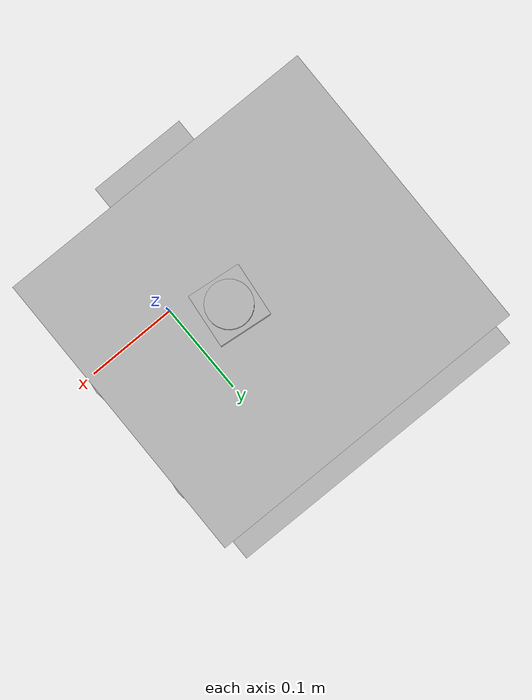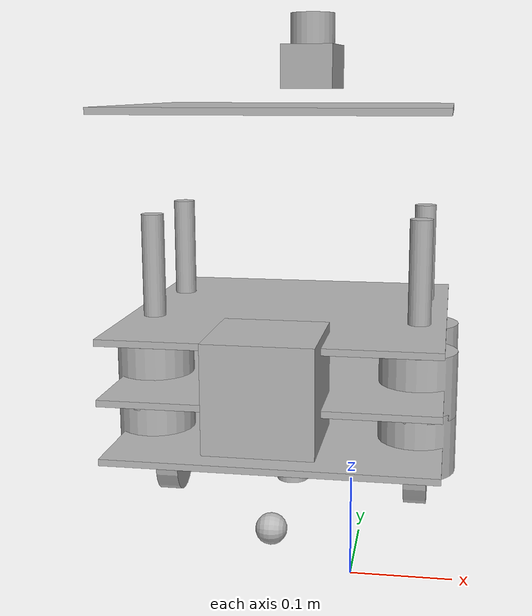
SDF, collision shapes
<?xml version='1.0'?>
<sdf version='1.6'>
  <model name='Bot'>
    <model name='camera'>
      <pose frame=''>-0.071115 -0.069035 0.21046 0 0 -1.5841</pose>
      <link name='link'>
        <inertial>
          <mass>0.1</mass>
          <inertia>
            <ixx>0.000166667</ixx>
            <iyy>0.000166667</iyy>
            <izz>0.000166667</izz>
            <ixy>0</ixy>
            <ixz>0</ixz>
            <iyz>0</iyz>
          </inertia>
        </inertial>
        <collision name='collision'>
          <geometry>
            <box>
              <size>0.1 0.1 0.1</size>
            </box>
          </geometry>
          <max_contacts>10</max_contacts>
          <surface>
            <contact>
              <ode/>
            </contact>
            <bounce/>
            <friction>
              <torsional>
                <ode/>
              </torsional>
              <ode/>
            </friction>
          </surface>
        </collision>
        <visual name='visual'>
          <geometry>
            <box>
              <size>0.1 0.1 0.1</size>
            </box>
          </geometry>
        </visual>
        <sensor name='camera' type='camera'>
          <camera name='__default__'>
            <horizontal_fov>1.047</horizontal_fov>
            <image>
              <width>320</width>
              <height>240</height>
            </image>
            <clip>
              <near>0.1</near>
              <far>100</far>
            </clip>
          </camera>
          <always_on>1</always_on>
          <update_rate>30</update_rate>
          <visualize>1</visualize>
        </sensor>
        <self_collide>0</self_collide>
        <kinematic>0</kinematic>
      </link>
    </model>
    <model name='hokuyo'>
      <pose frame=''>-0.04626 0.050338 0.507475 0 0 -1.68756</pose>
      <link name='link'>
        <inertial>
          <mass>0.1</mass>
          <inertia>
            <ixx>1</ixx>
            <ixy>0</ixy>
            <ixz>0</ixz>
            <iyy>1</iyy>
            <iyz>0</iyz>
            <izz>1</izz>
          </inertia>
        </inertial>
        <visual name='visual'>
          <geometry>
            <mesh>
              <uri>model://hokuyo/meshes/hokuyo.dae</uri>
            </mesh>
          </geometry>
        </visual>
        <collision name='collision-base'>
          <pose frame=''>0 0 -0.0145 0 -0 0</pose>
          <geometry>
            <box>
              <size>0.05 0.05 0.041</size>
            </box>
          </geometry>
          <max_contacts>10</max_contacts>
          <surface>
            <contact>
              <ode/>
            </contact>
            <bounce/>
            <friction>
              <torsional>
                <ode/>
              </torsional>
              <ode/>
            </friction>
          </surface>
        </collision>
        <collision name='collision-top'>
          <pose frame=''>0 0 0.0205 0 -0 0</pose>
          <geometry>
            <cylinder>
              <radius>0.021</radius>
              <length>0.029</length>
            </cylinder>
          </geometry>
          <max_contacts>10</max_contacts>
          <surface>
            <contact>
              <ode/>
            </contact>
            <bounce/>
            <friction>
              <torsional>
                <ode/>
              </torsional>
              <ode/>
            </friction>
          </surface>
        </collision>
        <sensor name='laser' type='ray'>
          <pose frame=''>0.01 0 0.0175 0 -0 0</pose>
          <ray>
            <scan>
              <horizontal>
                <samples>640</samples>
                <resolution>1</resolution>
                <min_angle>-2.26889</min_angle>
                <max_angle>2.2689</max_angle>
              </horizontal>
              <vertical>
                <samples>1</samples>
                <min_angle>0</min_angle>
                <max_angle>0</max_angle>
              </vertical>
            </scan>
            <range>
              <min>0.08</min>
              <max>10</max>
              <resolution>0.01</resolution>
            </range>
          </ray>
          <plugin name='laser' filename='libRayPlugin.so'/>
          <always_on>1</always_on>
          <update_rate>30</update_rate>
          <visualize>1</visualize>
        </sensor>
        <self_collide>0</self_collide>
        <enable_wind>0</enable_wind>
        <kinematic>0</kinematic>
      </link>
    </model>
    <model name='turtlebot'>
      <link name='rack'>
        <inertial>
          <pose frame=''>0.001453 -0.000453 0.029787 0 -0 0</pose>
          <inertia>
            <ixx>0.05864</ixx>
            <ixy>0.000124</ixy>
            <ixz>0.000615</ixz>
            <iyy>0.058786</iyy>
            <iyz>1.4e-05</iyz>
            <izz>1.53244</izz>
          </inertia>
          <mass>2.234</mass>
        </inertial>
        <collision name='plate_0_collision'>
          <pose frame=''>-0.04334 0 0.084757 0 -0 0</pose>
          <geometry>
            <box>
              <size>0.233502 0.314845 0.006401</size>
            </box>
          </geometry>
          <max_contacts>10</max_contacts>
          <surface>
            <contact>
              <ode/>
            </contact>
            <bounce/>
            <friction>
              <torsional>
                <ode/>
              </torsional>
              <ode/>
            </friction>
          </surface>
        </collision>
        <visual name='plate_0_visual'>
          <pose frame=''>-0.04334 0 0.084757 0 -0 0</pose>
          <geometry>
            <mesh>
              <uri>model://turtlebot/meshes/plate_0_logo.dae</uri>
            </mesh>
          </geometry>
        </visual>
        <collision name='plate_1_collision'>
          <pose frame=''>-0.00266 0 0.141907 0 -0 0</pose>
          <geometry>
            <box>
              <size>0.314856 0.314856 0.006401</size>
            </box>
          </geometry>
          <max_contacts>10</max_contacts>
          <surface>
            <contact>
              <ode/>
            </contact>
            <bounce/>
            <friction>
              <torsional>
                <ode/>
              </torsional>
              <ode/>
            </friction>
          </surface>
        </collision>
        <visual name='plate_1_visual'>
          <pose frame=''>-0.00266 0 0.141907 0 -0 0</pose>
          <geometry>
            <mesh>
              <uri>model://turtlebot/meshes/plate_1_logo.dae</uri>
            </mesh>
          </geometry>
        </visual>
        <collision name='plate_2_collision'>
          <pose frame=''>-0.00266 0 0.199108 0 -0 0</pose>
          <geometry>
            <box>
              <size>0.314856 0.314856 0.006401</size>
            </box>
          </geometry>
          <max_contacts>10</max_contacts>
          <surface>
            <contact>
              <ode/>
            </contact>
            <bounce/>
            <friction>
              <torsional>
                <ode/>
              </torsional>
              <ode/>
            </friction>
          </surface>
        </collision>
        <visual name='plate_2_visual'>
          <pose frame=''>-0.00266 0 0.199108 0 -0 0</pose>
          <geometry>
            <mesh>
              <uri>model://turtlebot/meshes/plate_1_logo.dae</uri>
            </mesh>
          </geometry>
        </visual>
        <collision name='plate_3_collision'>
          <pose frame=''>-0.01582 0 0.405457 0 -0 0</pose>
          <geometry>
            <box>
              <size>0.288 0.315 0.006401</size>
            </box>
          </geometry>
          <max_contacts>10</max_contacts>
          <surface>
            <contact>
              <ode/>
            </contact>
            <bounce/>
            <friction>
              <torsional>
                <ode/>
              </torsional>
              <ode/>
            </friction>
          </surface>
        </collision>
        <visual name='plate_3_visual'>
          <pose frame=''>-0.01582 0 0.405457 0 -0 0</pose>
          <geometry>
            <mesh>
              <uri>model://turtlebot/meshes/plate_2_logo.dae</uri>
            </mesh>
          </geometry>
        </visual>
        <collision name='spacer_0_collision'>
          <pose frame=''>-0.00254 0.111468 0.079992 0 -0 0</pose>
          <geometry>
            <cylinder>
              <radius>0.0127</radius>
              <length>0.003175</length>
            </cylinder>
          </geometry>
          <max_contacts>10</max_contacts>
          <surface>
            <contact>
              <ode/>
            </contact>
            <bounce/>
            <friction>
              <torsional>
                <ode/>
              </torsional>
              <ode/>
            </friction>
          </surface>
        </collision>
        <visual name='spacer_0_visual'>
          <pose frame=''>-0.00254 0.111468 0.079992 0 -0 0</pose>
          <geometry>
            <mesh>
              <uri>model://turtlebot/meshes/68-02403-125_Spacer.dae</uri>
            </mesh>
          </geometry>
        </visual>
        <collision name='spacer_1_collision'>
          <pose frame=''>-0.00254 -0.111468 0.079992 0 -0 0</pose>
          <geometry>
            <cylinder>
              <radius>0.0127</radius>
              <length>0.003175</length>
            </cylinder>
          </geometry>
          <max_contacts>10</max_contacts>
          <surface>
            <contact>
              <ode/>
            </contact>
            <bounce/>
            <friction>
              <torsional>
                <ode/>
              </torsional>
              <ode/>
            </friction>
          </surface>
        </collision>
        <visual name='spacer_1_visual'>
          <pose frame=''>-0.00254 -0.111468 0.079992 0 -0 0</pose>
          <geometry>
            <mesh>
              <uri>model://turtlebot/meshes/68-02403-125_Spacer.dae</uri>
            </mesh>
          </geometry>
        </visual>
        <collision name='spacer_2_collision'>
          <pose frame=''>-0.07239 -0.111468 0.079992 0 -0 0</pose>
          <geometry>
            <cylinder>
              <radius>0.0127</radius>
              <length>0.003175</length>
            </cylinder>
          </geometry>
          <max_contacts>10</max_contacts>
          <surface>
            <contact>
              <ode/>
            </contact>
            <bounce/>
            <friction>
              <torsional>
                <ode/>
              </torsional>
              <ode/>
            </friction>
          </surface>
        </collision>
        <visual name='spacer_2_visual'>
          <pose frame=''>-0.07239 -0.111468 0.079992 0 -0 0</pose>
          <geometry>
            <mesh>
              <uri>model://turtlebot/meshes/68-02403-125_Spacer.dae</uri>
            </mesh>
          </geometry>
        </visual>
        <collision name='spacer_3_collision'>
          <pose frame=''>-0.07239 0.111468 0.079992 0 -0 0</pose>
          <geometry>
            <cylinder>
              <radius>0.0127</radius>
              <length>0.003175</length>
            </cylinder>
          </geometry>
          <max_contacts>10</max_contacts>
          <surface>
            <contact>
              <ode/>
            </contact>
            <bounce/>
            <friction>
              <torsional>
                <ode/>
              </torsional>
              <ode/>
            </friction>
          </surface>
        </collision>
        <visual name='spacer_3_visual'>
          <pose frame=''>-0.07239 0.111468 0.079992 0 -0 0</pose>
          <geometry>
            <mesh>
              <uri>model://turtlebot/meshes/68-02403-125_Spacer.dae</uri>
            </mesh>
          </geometry>
        </visual>
        <collision name='standoff_2in_0_collision'>
          <pose frame=''>0.06764 0.13142 0.08798 0 -0 0</pose>
          <geometry>
            <cylinder>
              <radius>0.0381</radius>
              <length>0.0635</length>
            </cylinder>
          </geometry>
          <max_contacts>10</max_contacts>
          <surface>
            <contact>
              <ode/>
            </contact>
            <bounce/>
            <friction>
              <torsional>
                <ode/>
              </torsional>
              <ode/>
            </friction>
          </surface>
        </collision>
        <visual name='standoff_2in_0_visual'>
          <pose frame=''>0.06764 0.13142 0.08798 0 -0 0</pose>
          <geometry>
            <mesh>
              <uri>model://turtlebot/meshes/68-04552-2000-RA_Turtlebot_M-F_Standoff.dae</uri>
            </mesh>
          </geometry>
        </visual>
        <collision name='standoff_2in_1_collision'>
          <pose frame=''>0.06764 -0.13142 0.08798 0 -0 0</pose>
          <geometry>
            <cylinder>
              <radius>0.0381</radius>
              <length>0.0635</length>
            </cylinder>
          </geometry>
          <max_contacts>10</max_contacts>
          <surface>
            <contact>
              <ode/>
            </contact>
            <bounce/>
            <friction>
              <torsional>
                <ode/>
              </torsional>
              <ode/>
            </friction>
          </surface>
        </collision>
        <visual name='standoff_2in_1_visual'>
          <pose frame=''>0.06764 -0.13142 0.08798 0 -0 0</pose>
          <geometry>
            <mesh>
              <uri>model://turtlebot/meshes/68-04552-2000-RA_Turtlebot_M-F_Standoff.dae</uri>
            </mesh>
          </geometry>
        </visual>
        <collision name='standoff_2in_2_collision'>
          <pose frame=''>-0.052832 -0.13142 0.08798 0 -0 0</pose>
          <geometry>
            <cylinder>
              <radius>0.0381</radius>
              <length>0.0635</length>
            </cylinder>
          </geometry>
          <max_contacts>10</max_contacts>
          <surface>
            <contact>
              <ode/>
            </contact>
            <bounce/>
            <friction>
              <torsional>
                <ode/>
              </torsional>
              <ode/>
            </friction>
          </surface>
        </collision>
        <visual name='standoff_2in_2_visual'>
          <pose frame=''>-0.052832 -0.13142 0.08798 0 -0 0</pose>
          <geometry>
            <mesh>
              <uri>model://turtlebot/meshes/68-04552-2000-RA_Turtlebot_M-F_Standoff.dae</uri>
            </mesh>
          </geometry>
        </visual>
        <collision name='standoff_2in_3_collision'>
          <pose frame=''>-0.052832 0.13142 0.08798 0 -0 0</pose>
          <geometry>
            <cylinder>
              <radius>0.0381</radius>
              <length>0.0635</length>
            </cylinder>
          </geometry>
          <max_contacts>10</max_contacts>
          <surface>
            <contact>
              <ode/>
            </contact>
            <bounce/>
            <friction>
              <torsional>
                <ode/>
              </torsional>
              <ode/>
            </friction>
          </surface>
        </collision>
        <visual name='standoff_2in_3_visual'>
          <pose frame=''>-0.052832 0.13142 0.08798 0 -0 0</pose>
          <geometry>
            <mesh>
              <uri>model://turtlebot/meshes/68-04552-2000-RA_Turtlebot_M-F_Standoff.dae</uri>
            </mesh>
          </geometry>
        </visual>
        <collision name='standoff_2in_4_collision'>
          <pose frame=''>0.06764 0.13142 0.14513 0 -0 0</pose>
          <geometry>
            <cylinder>
              <radius>0.0381</radius>
              <length>0.0635</length>
            </cylinder>
          </geometry>
          <max_contacts>10</max_contacts>
          <surface>
            <contact>
              <ode/>
            </contact>
            <bounce/>
            <friction>
              <torsional>
                <ode/>
              </torsional>
              <ode/>
            </friction>
          </surface>
        </collision>
        <visual name='standoff_2in_4_visual'>
          <pose frame=''>0.06764 0.13142 0.14513 0 -0 0</pose>
          <geometry>
            <mesh>
              <uri>model://turtlebot/meshes/68-04552-2000-RA_Turtlebot_M-F_Standoff.dae</uri>
            </mesh>
          </geometry>
        </visual>
        <collision name='standoff_2in_5_collision'>
          <pose frame=''>0.06764 -0.13142 0.14513 0 -0 0</pose>
          <geometry>
            <cylinder>
              <radius>0.0381</radius>
              <length>0.0635</length>
            </cylinder>
          </geometry>
          <max_contacts>10</max_contacts>
          <surface>
            <contact>
              <ode/>
            </contact>
            <bounce/>
            <friction>
              <torsional>
                <ode/>
              </torsional>
              <ode/>
            </friction>
          </surface>
        </collision>
        <visual name='standoff_2in_5_visual'>
          <pose frame=''>0.06764 -0.13142 0.14513 0 -0 0</pose>
          <geometry>
            <mesh>
              <uri>model://turtlebot/meshes/68-04552-2000-RA_Turtlebot_M-F_Standoff.dae</uri>
            </mesh>
          </geometry>
        </visual>
        <collision name='standoff_2in_6_collision'>
          <pose frame=''>-0.052832 -0.13142 0.14513 0 -0 0</pose>
          <geometry>
            <cylinder>
              <radius>0.0381</radius>
              <length>0.0635</length>
            </cylinder>
          </geometry>
          <max_contacts>10</max_contacts>
          <surface>
            <contact>
              <ode/>
            </contact>
            <bounce/>
            <friction>
              <torsional>
                <ode/>
              </torsional>
              <ode/>
            </friction>
          </surface>
        </collision>
        <visual name='standoff_2in_6_visual'>
          <pose frame=''>-0.052832 -0.13142 0.14513 0 -0 0</pose>
          <geometry>
            <mesh>
              <uri>model://turtlebot/meshes/68-04552-2000-RA_Turtlebot_M-F_Standoff.dae</uri>
            </mesh>
          </geometry>
        </visual>
        <collision name='standoff_2in_7_collision'>
          <pose frame=''>-0.052832 0.13142 0.14513 0 -0 0</pose>
          <geometry>
            <cylinder>
              <radius>0.0381</radius>
              <length>0.0635</length>
            </cylinder>
          </geometry>
          <max_contacts>10</max_contacts>
          <surface>
            <contact>
              <ode/>
            </contact>
            <bounce/>
            <friction>
              <torsional>
                <ode/>
              </torsional>
              <ode/>
            </friction>
          </surface>
        </collision>
        <visual name='standoff_2in_7_visual'>
          <pose frame=''>-0.052832 0.13142 0.14513 0 -0 0</pose>
          <geometry>
            <mesh>
              <uri>model://turtlebot/meshes/68-04552-2000-RA_Turtlebot_M-F_Standoff.dae</uri>
            </mesh>
          </geometry>
        </visual>
        <collision name='standoff_8in_0_collision'>
          <pose frame=''>0.06764 0.13142 0.20228 0 -0 0</pose>
          <geometry>
            <cylinder>
              <radius>0.011113</radius>
              <length>0.2032</length>
            </cylinder>
          </geometry>
          <max_contacts>10</max_contacts>
          <surface>
            <contact>
              <ode/>
            </contact>
            <bounce/>
            <friction>
              <torsional>
                <ode/>
              </torsional>
              <ode/>
            </friction>
          </surface>
        </collision>
        <visual name='standoff_8in_0_visual'>
          <pose frame=''>0.06764 0.13142 0.20228 0 -0 0</pose>
          <geometry>
            <mesh>
              <uri>model://turtlebot/meshes/68-02421-8000-RA_Turtlebot_F-F_Standoff.dae</uri>
            </mesh>
          </geometry>
        </visual>
        <collision name='standoff_8in_1_collision'>
          <pose frame=''>0.06764 -0.13142 0.20228 0 -0 0</pose>
          <geometry>
            <cylinder>
              <radius>0.011113</radius>
              <length>0.2032</length>
            </cylinder>
          </geometry>
          <max_contacts>10</max_contacts>
          <surface>
            <contact>
              <ode/>
            </contact>
            <bounce/>
            <friction>
              <torsional>
                <ode/>
              </torsional>
              <ode/>
            </friction>
          </surface>
        </collision>
        <visual name='standoff_8in_1_visual'>
          <pose frame=''>0.06764 -0.13142 0.20228 0 -0 0</pose>
          <geometry>
            <mesh>
              <uri>model://turtlebot/meshes/68-02421-8000-RA_Turtlebot_F-F_Standoff.dae</uri>
            </mesh>
          </geometry>
        </visual>
        <collision name='standoff_8in_2_collision'>
          <pose frame=''>-0.052832 -0.13142 0.20228 0 -0 0</pose>
          <geometry>
            <cylinder>
              <radius>0.011113</radius>
              <length>0.2032</length>
            </cylinder>
          </geometry>
          <max_contacts>10</max_contacts>
          <surface>
            <contact>
              <ode/>
            </contact>
            <bounce/>
            <friction>
              <torsional>
                <ode/>
              </torsional>
              <ode/>
            </friction>
          </surface>
        </collision>
        <visual name='standoff_8in_2_visual'>
          <pose frame=''>-0.052832 -0.13142 0.20228 0 -0 0</pose>
          <geometry>
            <mesh>
              <uri>model://turtlebot/meshes/68-02421-8000-RA_Turtlebot_F-F_Standoff.dae</uri>
            </mesh>
          </geometry>
        </visual>
        <collision name='standoff_8in_3_collision'>
          <pose frame=''>-0.052832 0.13142 0.20228 0 -0 0</pose>
          <geometry>
            <cylinder>
              <radius>0.011113</radius>
              <length>0.2032</length>
            </cylinder>
          </geometry>
          <max_contacts>10</max_contacts>
          <surface>
            <contact>
              <ode/>
            </contact>
            <bounce/>
            <friction>
              <torsional>
                <ode/>
              </torsional>
              <ode/>
            </friction>
          </surface>
        </collision>
        <visual name='standoff_8in_3_visual'>
          <pose frame=''>-0.052832 0.13142 0.20228 0 -0 0</pose>
          <geometry>
            <mesh>
              <uri>model://turtlebot/meshes/68-02421-8000-RA_Turtlebot_F-F_Standoff.dae</uri>
            </mesh>
          </geometry>
        </visual>
        <sensor name='laser' type='ray'>
          <pose frame=''>-0.065 0 0.092 0 -0 0</pose>
          <ray>
            <scan>
              <horizontal>
                <samples>180</samples>
                <resolution>1</resolution>
                <min_angle>-2.26893</min_angle>
                <max_angle>2.26893</max_angle>
              </horizontal>
              <vertical>
                <samples>1</samples>
                <min_angle>0</min_angle>
                <max_angle>0</max_angle>
              </vertical>
            </scan>
            <range>
              <min>0.08</min>
              <max>10</max>
              <resolution>0.01</resolution>
            </range>
          </ray>
          <update_rate>20</update_rate>
        </sensor>
        <self_collide>0</self_collide>
        <enable_wind>0</enable_wind>
        <kinematic>0</kinematic>
      </link>
      <link name='create::base'>
        <inertial>
          <pose frame=''>0.001453 -0.000453 0.029787 0 -0 0</pose>
          <inertia>
            <ixx>0.05864</ixx>
            <ixy>0.000124</ixy>
            <ixz>0.000615</ixz>
            <iyy>0.058786</iyy>
            <iyz>1.4e-05</iyz>
            <izz>1.53244</izz>
          </inertia>
          <mass>2.234</mass>
        </inertial>
        <collision name='base_collision'>
          <pose frame=''>0 0 0.0478 0 -0 0</pose>
          <geometry>
            <cylinder>
              <radius>0.016495</radius>
              <length>0.061163</length>
            </cylinder>
          </geometry>
          <max_contacts>10</max_contacts>
          <surface>
            <contact>
              <ode/>
            </contact>
            <bounce/>
            <friction>
              <torsional>
                <ode/>
              </torsional>
              <ode/>
            </friction>
          </surface>
        </collision>
        <visual name='base_visual'>
          <pose frame=''>0 0 0.0478 0 -0 0</pose>
          <geometry>
            <mesh>
              <uri>model://create/meshes/create_body.dae</uri>
            </mesh>
          </geometry>
        </visual>
        <collision name='front_wheel_collision'>
          <pose frame=''>0.13 0 0.017 -0 1.5707 1.5707</pose>
          <geometry>
            <sphere>
              <radius>0.018</radius>
            </sphere>
          </geometry>
          <surface>
            <friction>
              <ode>
                <mu>0</mu>
                <mu2>0</mu2>
                <fdir1>0 0 0</fdir1>
                <slip1>0</slip1>
                <slip2>0</slip2>
              </ode>
              <torsional>
                <ode/>
              </torsional>
            </friction>
            <contact>
              <ode/>
            </contact>
            <bounce/>
          </surface>
          <max_contacts>10</max_contacts>
        </collision>
        <visual name='front_wheel_visual'>
          <pose frame=''>0.13 0 0.017 -0 1.5707 1.5707</pose>
          <geometry>
            <sphere>
              <radius>0.009</radius>
            </sphere>
          </geometry>
        </visual>
        <collision name='rear_wheel_collision'>
          <pose frame=''>-0.13 0 0.017 -0 1.5707 1.5707</pose>
          <geometry>
            <sphere>
              <radius>0.015</radius>
            </sphere>
          </geometry>
          <surface>
            <friction>
              <ode>
                <mu>0</mu>
                <mu2>0</mu2>
                <fdir1>0 0 0</fdir1>
                <slip1>0</slip1>
                <slip2>0</slip2>
              </ode>
              <torsional>
                <ode/>
              </torsional>
            </friction>
            <contact>
              <ode/>
            </contact>
            <bounce/>
          </surface>
          <max_contacts>10</max_contacts>
        </collision>
        <visual name='rear_wheel_visual'>
          <pose frame=''>-0.13 0 0.017 -0 1.5707 1.5707</pose>
          <geometry>
            <sphere>
              <radius>0.0075</radius>
            </sphere>
          </geometry>
        </visual>
        <sensor name='left_cliff_sensor' type='ray'>
          <pose frame=''>0.07 0.14 0.027 0 1.57079 0</pose>
          <ray>
            <scan>
              <horizontal>
                <samples>1</samples>
                <resolution>1</resolution>
                <min_angle>0</min_angle>
                <max_angle>0</max_angle>
              </horizontal>
              <vertical>
                <samples>1</samples>
                <min_angle>0</min_angle>
                <max_angle>0</max_angle>
              </vertical>
            </scan>
            <range>
              <min>0.01</min>
              <max>0.04</max>
              <resolution>0.1</resolution>
            </range>
          </ray>
        </sensor>
        <sensor name='leftfront_cliff_sensor' type='ray'>
          <pose frame=''>0.15 0.04 0.027 0 1.57079 0</pose>
          <ray>
            <scan>
              <horizontal>
                <samples>1</samples>
                <resolution>1</resolution>
                <min_angle>0</min_angle>
                <max_angle>0</max_angle>
              </horizontal>
              <vertical>
                <samples>1</samples>
                <min_angle>0</min_angle>
                <max_angle>0</max_angle>
              </vertical>
            </scan>
            <range>
              <min>0.01</min>
              <max>0.04</max>
              <resolution>0.1</resolution>
            </range>
          </ray>
        </sensor>
        <sensor name='right_cliff_sensor' type='ray'>
          <pose frame=''>0.07 -0.14 0.027 0 1.57079 0</pose>
          <ray>
            <scan>
              <horizontal>
                <samples>1</samples>
                <resolution>1</resolution>
                <min_angle>0</min_angle>
                <max_angle>0</max_angle>
              </horizontal>
              <vertical>
                <samples>1</samples>
                <min_angle>0</min_angle>
                <max_angle>0</max_angle>
              </vertical>
            </scan>
            <range>
              <min>0.01</min>
              <max>0.04</max>
              <resolution>0.1</resolution>
            </range>
          </ray>
        </sensor>
        <sensor name='rightfront_cliff_sensor' type='ray'>
          <pose frame=''>0.15 -0.04 0.027 0 1.57079 0</pose>
          <ray>
            <scan>
              <horizontal>
                <samples>1</samples>
                <resolution>1</resolution>
                <min_angle>0</min_angle>
                <max_angle>0</max_angle>
              </horizontal>
              <vertical>
                <samples>1</samples>
                <min_angle>0</min_angle>
                <max_angle>0</max_angle>
              </vertical>
            </scan>
            <range>
              <min>0.01</min>
              <max>0.04</max>
              <resolution>0.1</resolution>
            </range>
          </ray>
        </sensor>
        <sensor name='wall_sensor' type='ray'>
          <pose frame=''>0.09 -0.12 0.059 0 0 -1</pose>
          <ray>
            <scan>
              <horizontal>
                <samples>1</samples>
                <resolution>1</resolution>
                <min_angle>0</min_angle>
                <max_angle>0</max_angle>
              </horizontal>
              <vertical>
                <samples>1</samples>
                <min_angle>0</min_angle>
                <max_angle>0</max_angle>
              </vertical>
            </scan>
            <range>
              <min>0.016</min>
              <max>0.04</max>
              <resolution>0.1</resolution>
            </range>
          </ray>
        </sensor>
        <pose frame=''>0 0 0 0 -0 0</pose>
        <self_collide>0</self_collide>
        <enable_wind>0</enable_wind>
        <kinematic>0</kinematic>
      </link>
      <link name='create::left_wheel'>
        <pose frame=''>0 0.13 0.032 0 -0 0</pose>
        <inertial>
          <inertia>
            <ixx>0.001</ixx>
            <ixy>0</ixy>
            <ixz>0</ixz>
            <iyy>0.001</iyy>
            <iyz>0</iyz>
            <izz>0.001</izz>
          </inertia>
          <mass>0.01</mass>
        </inertial>
        <collision name='collision'>
          <pose frame=''>0 0 0 -0 1.5707 1.5707</pose>
          <geometry>
            <cylinder>
              <radius>0.033</radius>
              <length>0.023</length>
            </cylinder>
          </geometry>
          <surface>
            <friction>
              <ode>
                <mu>10</mu>
                <mu2>10</mu2>
                <fdir1>0 0 0</fdir1>
                <slip1>0</slip1>
                <slip2>0</slip2>
              </ode>
              <torsional>
                <ode/>
              </torsional>
            </friction>
            <contact>
              <ode/>
            </contact>
            <bounce/>
          </surface>
          <max_contacts>10</max_contacts>
        </collision>
        <visual name='visual'>
          <pose frame=''>0 0 0 -0 1.5707 1.5707</pose>
          <geometry>
            <cylinder>
              <radius>0.033</radius>
              <length>0.023</length>
            </cylinder>
          </geometry>
        </visual>
        <self_collide>0</self_collide>
        <enable_wind>0</enable_wind>
        <kinematic>0</kinematic>
      </link>
      <link name='create::right_wheel'>
        <pose frame=''>0 -0.13 0.032 0 -0 0</pose>
        <inertial>
          <inertia>
            <ixx>0.001</ixx>
            <ixy>0</ixy>
            <ixz>0</ixz>
            <iyy>0.001</iyy>
            <iyz>0</iyz>
            <izz>0.001</izz>
          </inertia>
          <mass>0.01</mass>
        </inertial>
        <collision name='collision'>
          <pose frame=''>0 0 0 -0 1.5707 1.5707</pose>
          <geometry>
            <cylinder>
              <radius>0.033</radius>
              <length>0.023</length>
            </cylinder>
          </geometry>
          <surface>
            <friction>
              <ode>
                <mu>10</mu>
                <mu2>10</mu2>
                <fdir1>0 0 0</fdir1>
                <slip1>0</slip1>
                <slip2>0</slip2>
              </ode>
              <torsional>
                <ode/>
              </torsional>
            </friction>
            <contact>
              <ode/>
            </contact>
            <bounce/>
          </surface>
          <max_contacts>10</max_contacts>
        </collision>
        <visual name='visual'>
          <pose frame=''>0 0 0 -0 1.5707 1.5707</pose>
          <geometry>
            <cylinder>
              <radius>0.033</radius>
              <length>0.023</length>
            </cylinder>
          </geometry>
        </visual>
        <self_collide>0</self_collide>
        <enable_wind>0</enable_wind>
        <kinematic>0</kinematic>
      </link>
      <joint name='create::left_wheel' type='revolute'>
        <parent>create::base</parent>
        <child>create::left_wheel</child>
        <axis>
          <xyz>0 1 0</xyz>
          <use_parent_model_frame>1</use_parent_model_frame>
          <limit>
            <lower>-1e+16</lower>
            <upper>1e+16</upper>
          </limit>
          <dynamics>
            <spring_reference>0</spring_reference>
            <spring_stiffness>0</spring_stiffness>
          </dynamics>
        </axis>
      </joint>
      <joint name='create::right_wheel' type='revolute'>
        <parent>create::base</parent>
        <child>create::right_wheel</child>
        <axis>
          <xyz>0 1 0</xyz>
          <use_parent_model_frame>1</use_parent_model_frame>
          <limit>
            <lower>-1e+16</lower>
            <upper>1e+16</upper>
          </limit>
          <dynamics>
            <spring_reference>0</spring_reference>
            <spring_stiffness>0</spring_stiffness>
          </dynamics>
        </axis>
      </joint>
      <joint name='create_rack' type='revolute'>
        <parent>create::base</parent>
        <child>rack</child>
        <axis>
          <xyz>0 0 1</xyz>
          <limit>
            <lower>0</lower>
            <upper>0</upper>
          </limit>
          <use_parent_model_frame>1</use_parent_model_frame>
          <dynamics>
            <spring_reference>0</spring_reference>
            <spring_stiffness>0</spring_stiffness>
          </dynamics>
        </axis>
      </joint>
      <pose frame=''>-0.069451 0.079298 0.048534 0 -0 1.55848</pose>
    </model>
    <joint name='base_JOINT_0' type='fixed'>
      <parent>turtlebot::create::base</parent>
      <child>hokuyo::link</child>
      <pose frame=''>0 0 0 0 -0 0</pose>
      <physics>
        <ode>
          <limit>
            <cfm>0</cfm>
            <erp>0.2</erp>
          </limit>
          <suspension>
            <cfm>0</cfm>
            <erp>0.2</erp>
          </suspension>
        </ode>
      </physics>
    </joint>
    <joint name='rack_JOINT_0' type='fixed'>
      <parent>turtlebot::rack</parent>
      <child>camera::link</child>
      <pose frame=''>0 0 0 0 -0 0</pose>
      <physics>
        <ode>
          <limit>
            <cfm>0</cfm>
            <erp>0.2</erp>
          </limit>
          <suspension>
            <cfm>0</cfm>
            <erp>0.2</erp>
          </suspension>
        </ode>
      </physics>
    </joint>
    <static>0</static>
    <allow_auto_disable>1</allow_auto_disable>
  </model>
</sdf>
